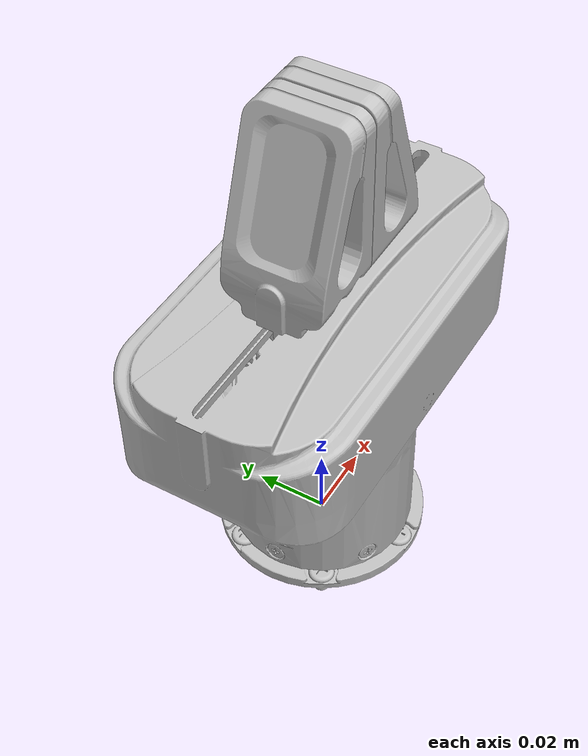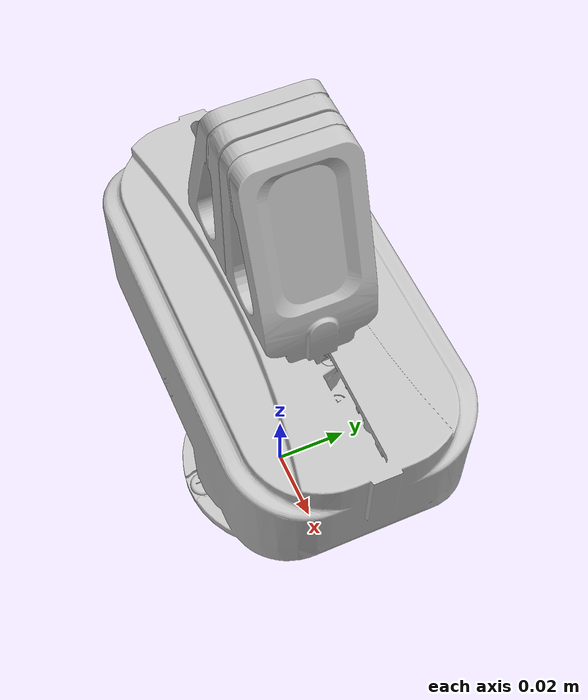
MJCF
<?xml version='1.0' encoding='UTF-8'?>
<mujoco model="RMG24_description">
  <compiler angle="radian"/>
  <asset>
    <mesh name="base_link" content_type="model/stl" file="/home/jinyu/Downloads/RMG24_description/meshes/base_link.STL"/>
    <mesh name="Link_finger1" content_type="model/stl" file="/home/jinyu/Downloads/RMG24_description/meshes/Link_finger1.STL"/>
    <mesh name="Link_finger2" content_type="model/stl" file="/home/jinyu/Downloads/RMG24_description/meshes/Link_finger2.STL"/>
  </asset>
  <worldbody>
    <body name="base_link">
      <inertial pos="4.891e-05 -5.4407e-05 0.04689" quat="-0.000127152 0.705039 0.0100547 0.709097" mass="0.17393" diaginertia="0.000124734 0.000116149 6.65918e-05"/>
      <geom type="mesh" rgba="0.75294 0.75294 0.75294 1" mesh="base_link"/>
      <body name="Link_finger1" pos="0 0 0.0891">
        <inertial pos="-0.0083779 -0.0014014 0.016575" quat="0.995128 0.0165404 0.0949976 0.0205634" mass="0.019443" diaginertia="4.19131e-06 3.86477e-06 1.60152e-06"/>
        <joint name="Joint_finger1" pos="0 0 0" axis="-1 0 0" type="slide" range="0 0.0325" actuatorfrcrange="-10 10"/>
        <geom type="mesh" rgba="0.75294 0.75294 0.75294 1" mesh="Link_finger1"/>
      </body>
      <body name="Link_finger2" pos="0 0 0.0891">
        <inertial pos="0.0083779 0.001392 0.016575" quat="0.995128 -0.0165404 -0.0949976 0.0205634" mass="0.019443" diaginertia="4.19131e-06 3.86477e-06 1.60152e-06"/>
        <joint name="Joint_finger2" pos="0 0 0" axis="1 0 0" type="slide" range="0 0.0325" actuatorfrcrange="-10 10"/>
        <geom type="mesh" rgba="0.75294 0.75294 0.75294 1" mesh="Link_finger2"/>
      </body>
    </body>
  </worldbody>
</mujoco>
